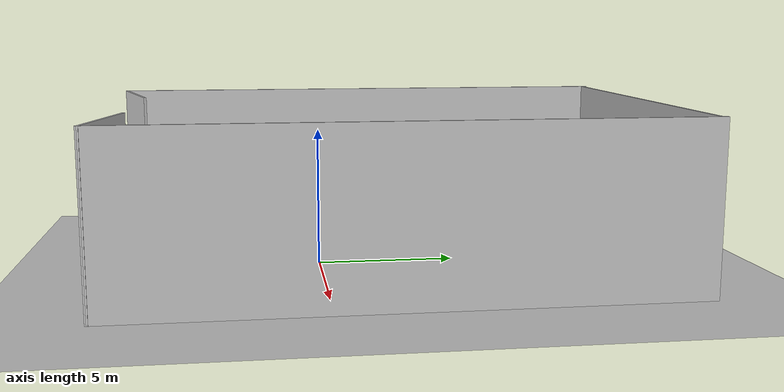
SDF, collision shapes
<?xml version='1.0'?>
<sdf version="1.4">
<model name="warehouse_pd">
  <static>true</static>
    <link name="warehouse_pd">
    	<pose>0 0 0 0 0 0</pose>
        <collision name="collision">
            <geometry>
	       <plane>
		   <size>100 100</size>
    	       </plane>
            </geometry>
        </collision>
        <visual name="visual">
            <geometry>
               <mesh>
                  <uri>model://warehouse_pd/meshes/warehouse_pd.dae</uri>
               </mesh>
            </geometry>
        </visual>
     </link>

     <link name="warehouse_pd_wall5">
	<collision name="collision2">
            <pose>-4.9 -7.0 3 0 0 1.85</pose>
            <geometry>
	       <box>
		   <size>0.1 4 6</size>
    	       </box>
            </geometry>
        </collision>
     </link>

     <link name="warehouse_pd_wall4">
	<collision name="collision2">
            <pose>4.9 -7.0 3 0 0 1.35</pose>
            <geometry>
	       <box>
		   <size>0.1 4 6</size>
    	       </box>
            </geometry>
        </collision>
     </link>

     <link name="warehouse_pd_wall3">
	<collision name="collision2">
            <pose>0 12.3 3 0 0 1.57</pose>
            <geometry>
	       <box>
		   <size>0.1 13.5 6</size>
    	       </box>
            </geometry>
        </collision>
     </link>

     <link name="warehouse_pd_wall2">
	<collision name="collision2">
            <pose>-6.8 2.5 3 0 0 0 </pose>
            <geometry>
	       <box>
		   <size>0.1 20 6</size>
    	       </box>
            </geometry>
        </collision>
     </link>

     <link name="warehouse_pd_wall1">
	<collision name="collision2">
            <pose>6.8 2.5 3 0 0 0 </pose>
            <geometry>
	       <box>
		   <size>0.1 20 6</size>
    	       </box>
            </geometry>
        </collision>
     </link>
</model>
</sdf>
